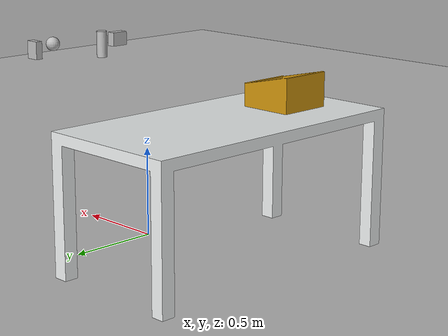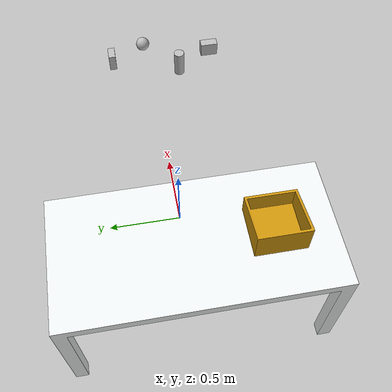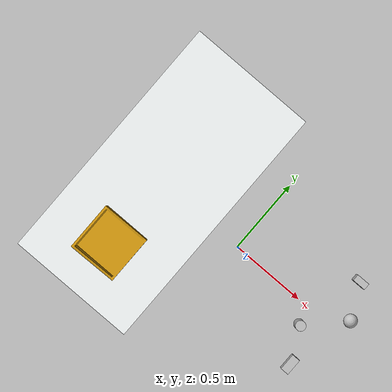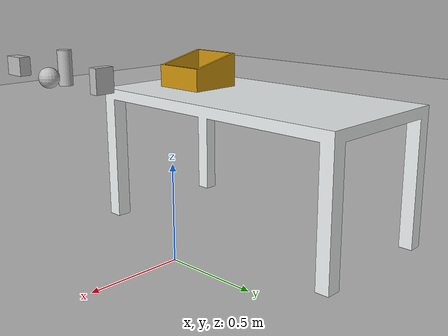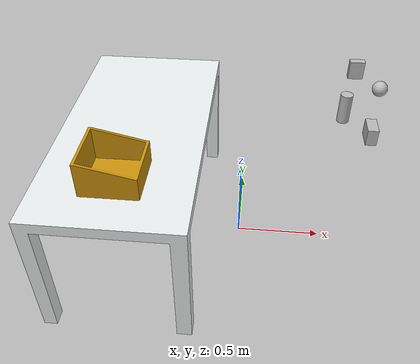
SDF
<sdf version="1.8">
 <world name="default">
  <plugin filename="gz-sim-physics-system" name="gz::sim::systems::Physics"/>
  <plugin filename="gz-sim-user-commands-system" name="gz::sim::systems::UserCommands"/>
  <plugin filename="gz-sim-scene-broadcaster-system" name="gz::sim::systems::SceneBroadcaster"/>
  <plugin filename="gz-sim-sensors-system" name="gz::sim::systems::Sensors">
   <render_engine>ogre2</render_engine>
  </plugin>
  <light type="directional" name="sun">
   <pose>0 0 10 0 0 0</pose>
   <diffuse>0.8 0.8 0.8 1</diffuse>
   <specular>0.2 0.2 0.2 1</specular>
   <direction>-0.5 0.1 -0.9</direction>
   <visualize>false</visualize>
  </light>
  <gravity>0 0 -9.8</gravity>
  <magnetic_field>6e-06 2.3e-05 -4.2e-05</magnetic_field>
  <atmosphere type="adiabatic"/>
  <physics name="default_physics" default="0" type="ode">
   <max_step_size>0.001</max_step_size>
   <real_time_factor>1</real_time_factor>
   <real_time_update_rate>1000</real_time_update_rate>
  </physics>
  <scene><ambient>0.4 0.4 0.4 1</ambient><background>0.7 0.7 0.7 1</background><shadows>1</shadows></scene>
  <spherical_coordinates>
   <surface_model>EARTH_WGS84</surface_model>
   <latitude_deg>0</latitude_deg>
   <longitude_deg>0</longitude_deg>
   <elevation>0</elevation>
   <heading_deg>0</heading_deg>
  </spherical_coordinates>
  <model name="ground_plane">
   <static>true</static>
   <link name="link">
    <collision name="collision">
     <geometry><plane><normal>0 0 1</normal><size>100 100</size></plane></geometry>
     <surface>
      <contact><collide_bitmask>65535</collide_bitmask></contact>
      <friction><ode><mu>100</mu><mu2>50</mu2></ode></friction>
     </surface>
    </collision>
    <visual name="visual">
     <cast_shadows>0</cast_shadows>
     <geometry><plane><normal>0 0 1</normal><size>100 100</size></plane></geometry>
     <material>
      <pbr>
       <metal>
        <albedo><color>0.5 0.5 0.5 1.0</color></albedo>
        <metalness>0.1</metalness>
        <roughness>0.6</roughness>
       </metal>
      </pbr>
     </material>
    </visual>
   </link>
  </model>
  <model name="ground_logo_big">
   <static>true</static>
   <link name="link">
    <visual name="visual">
     <pose>0 0 0.001 0 -0 0</pose>
     <geometry>
      <mesh><scale>1 1 1</scale><uri>model://ground_logo_big/meshes/ground_logo.dae</uri></mesh>
     </geometry>
    </visual>
   </link>
   <pose>-0.5 0 0 0 -0 1.57</pose>
  </model>
  <model name="target_table">
   <link name="link">
    <inertial>
     <mass>1</mass>
     <inertia><ixx>1</ixx><ixy>0</ixy><ixz>0</ixz><iyy>1</iyy><iyz>0</iyz><izz>1</izz></inertia>
    </inertial>
    <visual name="visual">
     <geometry><mesh><scale>1 1 1</scale><uri>model://target_table/meshes/target_table.dae</uri></mesh></geometry>
    </visual>
    <collision name="collision_0">
     <geometry><box><size>0.8 1.6 0.06</size></box></geometry>
     <surface>
      <friction>
       <ode><mu>1</mu><mu2>1</mu2><fdir1>0 0 0</fdir1><slip1>0</slip1><slip2>0</slip2></ode>
       <torsional>
        <coefficient>1</coefficient>
        <patch_radius>0</patch_radius>
        <surface_radius>0</surface_radius>
        <use_patch_radius>1</use_patch_radius>
        <ode><slip>0</slip></ode>
       </torsional>
      </friction>
      <bounce><restitution_coefficient>0</restitution_coefficient><threshold>1e+06</threshold></bounce>
      <contact>
       <collide_without_contact>0</collide_without_contact>
       <collide_without_contact_bitmask>1</collide_without_contact_bitmask>
       <collide_bitmask>1</collide_bitmask>
       <ode>
        <soft_cfm>0</soft_cfm>
        <soft_erp>0.2</soft_erp>
        <kp>1e+13</kp>
        <kd>1</kd>
        <max_vel>0.01</max_vel>
        <min_depth>0</min_depth>
       </ode>
       <bullet>
        <split_impulse>1</split_impulse>
        <split_impulse_penetration_threshold>-0.01</split_impulse_penetration_threshold>
        <soft_cfm>0</soft_cfm>
        <soft_erp>0.2</soft_erp>
        <kp>1e+13</kp>
        <kd>1</kd>
       </bullet>
      </contact>
     </surface>
    </collision>
   </link>
   <static>true</static>
   <pose>-0.6 0 0.73 0 -0 0</pose>
  </model>
  <model name="yellow_target">
   <static>true</static>
   <link name="link">
    <inertial>
     <mass>1</mass>
     <inertia><ixx>1</ixx><ixy>0</ixy><ixz>0</ixz><iyy>1</iyy><iyz>0</iyz><izz>1</izz></inertia>
    </inertial>
    <visual name="visual">
     <pose>0 0 0.01 0 -0 0</pose>
     <geometry>
      <mesh><scale>0.5 0.5 0.5</scale><uri>model://yellow_target/meshes/yellow_target.dae</uri></mesh>
     </geometry>
    </visual>
    <collision name="front_wall">
     <pose>0.144 0 0 0 -0 0</pose>
     <geometry><box><size>0.012 0.3 0.24</size></box></geometry>
     <surface>
      <friction>
       <ode><mu>1</mu><mu2>1</mu2><fdir1>0 0 0</fdir1><slip1>0</slip1><slip2>0</slip2></ode>
       <torsional>
        <coefficient>1</coefficient>
        <patch_radius>0</patch_radius>
        <surface_radius>0</surface_radius>
        <use_patch_radius>1</use_patch_radius>
        <ode><slip>0</slip></ode>
       </torsional>
      </friction>
      <bounce><restitution_coefficient>0</restitution_coefficient><threshold>1e+06</threshold></bounce>
      <contact>
       <collide_without_contact>0</collide_without_contact>
       <collide_without_contact_bitmask>1</collide_without_contact_bitmask>
       <collide_bitmask>1</collide_bitmask>
       <ode>
        <soft_cfm>0</soft_cfm>
        <soft_erp>0.2</soft_erp>
        <kp>1e+13</kp>
        <kd>1</kd>
        <max_vel>0.01</max_vel>
        <min_depth>0</min_depth>
       </ode>
       <bullet>
        <split_impulse>1</split_impulse>
        <split_impulse_penetration_threshold>-0.01</split_impulse_penetration_threshold>
        <soft_cfm>0</soft_cfm>
        <soft_erp>0.2</soft_erp>
        <kp>1e+13</kp>
        <kd>1</kd>
       </bullet>
      </contact>
     </surface>
    </collision>
    <collision name="right_wall">
     <pose>0 -0.144 0 0 -0 0</pose>
     <geometry><box><size>0.3 0.012 0.36</size></box></geometry>
     <surface>
      <friction>
       <ode><mu>1</mu><mu2>1</mu2><fdir1>0 0 0</fdir1><slip1>0</slip1><slip2>0</slip2></ode>
       <torsional>
        <coefficient>1</coefficient>
        <patch_radius>0</patch_radius>
        <surface_radius>0</surface_radius>
        <use_patch_radius>1</use_patch_radius>
        <ode><slip>0</slip></ode>
       </torsional>
      </friction>
      <bounce><restitution_coefficient>0</restitution_coefficient><threshold>1e+06</threshold></bounce>
      <contact>
       <collide_without_contact>0</collide_without_contact>
       <collide_without_contact_bitmask>1</collide_without_contact_bitmask>
       <collide_bitmask>1</collide_bitmask>
       <ode>
        <soft_cfm>0</soft_cfm>
        <soft_erp>0.2</soft_erp>
        <kp>1e+13</kp>
        <kd>1</kd>
        <max_vel>0.01</max_vel>
        <min_depth>0</min_depth>
       </ode>
       <bullet>
        <split_impulse>1</split_impulse>
        <split_impulse_penetration_threshold>-0.01</split_impulse_penetration_threshold>
        <soft_cfm>0</soft_cfm>
        <soft_erp>0.2</soft_erp>
        <kp>1e+13</kp>
        <kd>1</kd>
       </bullet>
      </contact>
     </surface>
    </collision>
    <collision name="bottom">
     <geometry><box><size>0.3 0.3 0.025</size></box></geometry>
     <surface>
      <friction>
       <ode><mu>1</mu><mu2>1</mu2><fdir1>0 0 0</fdir1><slip1>0</slip1><slip2>0</slip2></ode>
       <torsional>
        <coefficient>1</coefficient>
        <patch_radius>0</patch_radius>
        <surface_radius>0</surface_radius>
        <use_patch_radius>1</use_patch_radius>
        <ode><slip>0</slip></ode>
       </torsional>
      </friction>
      <bounce><restitution_coefficient>0</restitution_coefficient><threshold>1e+06</threshold></bounce>
      <contact>
       <collide_without_contact>0</collide_without_contact>
       <collide_without_contact_bitmask>1</collide_without_contact_bitmask>
       <collide_bitmask>1</collide_bitmask>
       <ode>
        <soft_cfm>0</soft_cfm>
        <soft_erp>0.2</soft_erp>
        <kp>1e+13</kp>
        <kd>1</kd>
        <max_vel>0.01</max_vel>
        <min_depth>0</min_depth>
       </ode>
       <bullet>
        <split_impulse>1</split_impulse>
        <split_impulse_penetration_threshold>-0.01</split_impulse_penetration_threshold>
        <soft_cfm>0</soft_cfm>
        <soft_erp>0.2</soft_erp>
        <kp>1e+13</kp>
        <kd>1</kd>
       </bullet>
      </contact>
     </surface>
    </collision>
    <collision name="left_wall">
     <pose>0 0.144 0 0 -0 0</pose>
     <geometry><box><size>0.3 0.012 0.39</size></box></geometry>
     <surface>
      <friction>
       <ode><mu>1</mu><mu2>1</mu2><fdir1>0 0 0</fdir1><slip1>0</slip1><slip2>0</slip2></ode>
       <torsional>
        <coefficient>1</coefficient>
        <patch_radius>0</patch_radius>
        <surface_radius>0</surface_radius>
        <use_patch_radius>1</use_patch_radius>
        <ode><slip>0</slip></ode>
       </torsional>
      </friction>
      <bounce><restitution_coefficient>0</restitution_coefficient><threshold>1e+06</threshold></bounce>
      <contact>
       <collide_without_contact>0</collide_without_contact>
       <collide_without_contact_bitmask>1</collide_without_contact_bitmask>
       <collide_bitmask>1</collide_bitmask>
       <ode>
        <soft_cfm>0</soft_cfm>
        <soft_erp>0.2</soft_erp>
        <kp>1e+13</kp>
        <kd>1</kd>
        <max_vel>0.01</max_vel>
        <min_depth>0</min_depth>
       </ode>
       <bullet>
        <split_impulse>1</split_impulse>
        <split_impulse_penetration_threshold>-0.01</split_impulse_penetration_threshold>
        <soft_cfm>0</soft_cfm>
        <soft_erp>0.2</soft_erp>
        <kp>1e+13</kp>
        <kd>1</kd>
       </bullet>
      </contact>
     </surface>
    </collision>
    <collision name="back_wall">
     <pose>-0.144 0 0 0 -0 0</pose>
     <geometry><box><size>0.012 0.3 0.39</size></box></geometry>
     <surface>
      <friction>
       <ode><mu>1</mu><mu2>1</mu2><fdir1>0 0 0</fdir1><slip1>0</slip1><slip2>0</slip2></ode>
       <torsional>
        <coefficient>1</coefficient>
        <patch_radius>0</patch_radius>
        <surface_radius>0</surface_radius>
        <use_patch_radius>1</use_patch_radius>
        <ode><slip>0</slip></ode>
       </torsional>
      </friction>
      <bounce><restitution_coefficient>0</restitution_coefficient><threshold>1e+06</threshold></bounce>
      <contact>
       <collide_without_contact>0</collide_without_contact>
       <collide_without_contact_bitmask>1</collide_without_contact_bitmask>
       <collide_bitmask>1</collide_bitmask>
       <ode>
        <soft_cfm>0</soft_cfm>
        <soft_erp>0.2</soft_erp>
        <kp>1e+13</kp>
        <kd>1</kd>
        <max_vel>0.01</max_vel>
        <min_depth>0</min_depth>
       </ode>
       <bullet>
        <split_impulse>1</split_impulse>
        <split_impulse_penetration_threshold>-0.01</split_impulse_penetration_threshold>
        <soft_cfm>0</soft_cfm>
        <soft_erp>0.2</soft_erp>
        <kp>1e+13</kp>
        <kd>1</kd>
       </bullet>
      </contact>
     </surface>
    </collision>
   </link>
   <pose>-0.6 -0.45 0.755 0 -0 0</pose>
  </model>
  <model name="red_box">
   <link name="red_box">
    <inertial>
     <mass>0.01</mass>
     <inertia><ixx>0</ixx><ixy>0</ixy><ixz>0</ixz><iyy>0</iyy><iyz>0</iyz><izz>0</izz></inertia>
    </inertial>
    <collision name="red_box_collision"><geometry><box><size>0.05 0.1 0.08</size></box></geometry></collision>
    <visual name="red_box_visual">
     <geometry><box><size>0.05 0.1 0.08</size></box></geometry>
     <material>
      <pbr>
       <metal>
        <albedo><color>1.0 0.0 0.0 1.0</color></albedo>
        <metalness>0.1</metalness>
        <roughness>0.6</roughness>
       </metal>
      </pbr>
     </material>
    </visual>
   </link>
   <pose>0.6 -0.3 1.01 0 -0 0</pose>
  </model>
  <model name="green_cylinder">
   <link name="green_cylinder">
    <inertial>
     <mass>0.01</mass>
     <inertia><ixx>0</ixx><ixy>0</ixy><ixz>0</ixz><iyy>0</iyy><iyz>0</iyz><izz>0</izz></inertia>
    </inertial>
    <collision name="green_cylinder_collision">
     <geometry><cylinder><length>0.15</length><radius>0.03</radius></cylinder></geometry>
    </collision>
    <visual name="green_cylinder_visual">
     <geometry><cylinder><length>0.15</length><radius>0.03</radius></cylinder></geometry>
     <material>
      <pbr>
       <metal>
        <albedo><color>0.0 1.0 0.0 1.0</color></albedo>
        <metalness>0.1</metalness>
        <roughness>0.6</roughness>
       </metal>
      </pbr>
     </material>
    </visual>
   </link>
   <pose>0.5 -0.1 1.01 0 -0 0</pose>
  </model>
  <model name="blue_sphere">
   <link name="blue_sphere">
    <inertial>
     <mass>0.01</mass>
     <inertia><ixx>0</ixx><ixy>0</ixy><ixz>0</ixz><iyy>0</iyy><iyz>0</iyz><izz>0</izz></inertia>
    </inertial>
    <collision name="blue_sphere_collision">
     <geometry><sphere><radius>0.04</radius></sphere></geometry>
    </collision>
    <visual name="blue_sphere_visual">
     <geometry><sphere><radius>0.04</radius></sphere></geometry>
     <material>
      <pbr>
       <metal>
        <albedo><color>0.0 0.0 1.0 1.0</color></albedo>
        <metalness>0.1</metalness>
        <roughness>0.6</roughness>
       </metal>
      </pbr>
     </material>
    </visual>
   </link>
   <pose>0.7 0.1 1.01 0 -0 0</pose>
  </model>
  <model name="yellow_box">
   <link name="yellow_box">
    <inertial>
     <mass>0.01</mass>
     <inertia><ixx>0</ixx><ixy>0</ixy><ixz>0</ixz><iyy>0</iyy><iyz>0</iyz><izz>0</izz></inertia>
    </inertial>
    <collision name="yellow_box_collision"><geometry><box><size>0.05 0.07 0.1</size></box></geometry></collision>
    <visual name="yellow_box_visual">
     <geometry><box><size>0.08 0.04 0.1</size></box></geometry>
     <material>
      <pbr>
       <metal>
        <albedo><color>1.0 1.0 0.0 1.0</color></albedo>
        <metalness>0.1</metalness>
        <roughness>0.6</roughness>
       </metal>
      </pbr>
     </material>
    </visual>
   </link>
   <pose>0.6 0.3 1.01 0 -0 0</pose>
  </model>
 </world>
</sdf>
